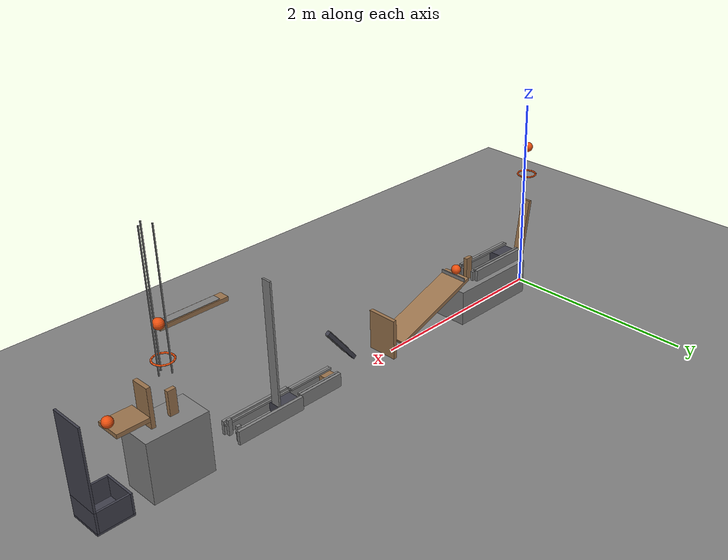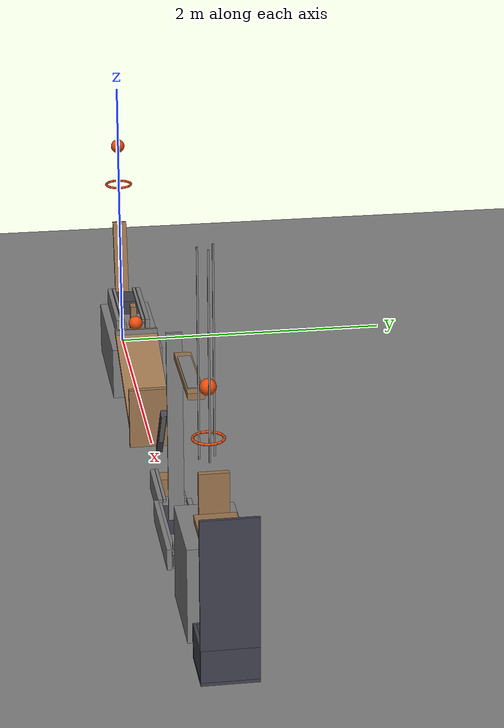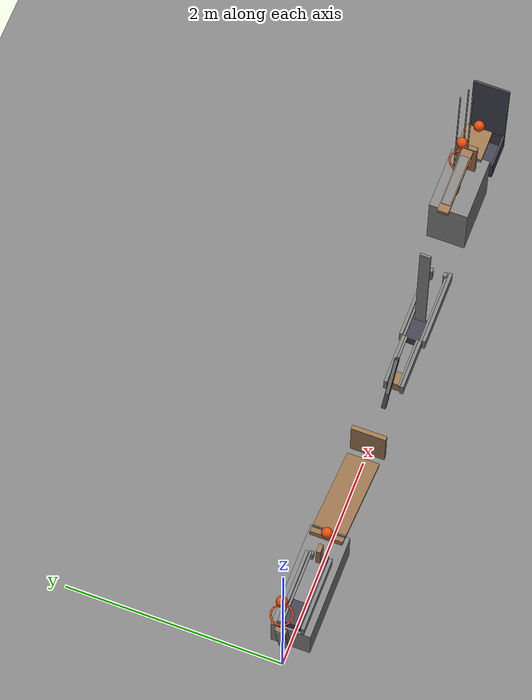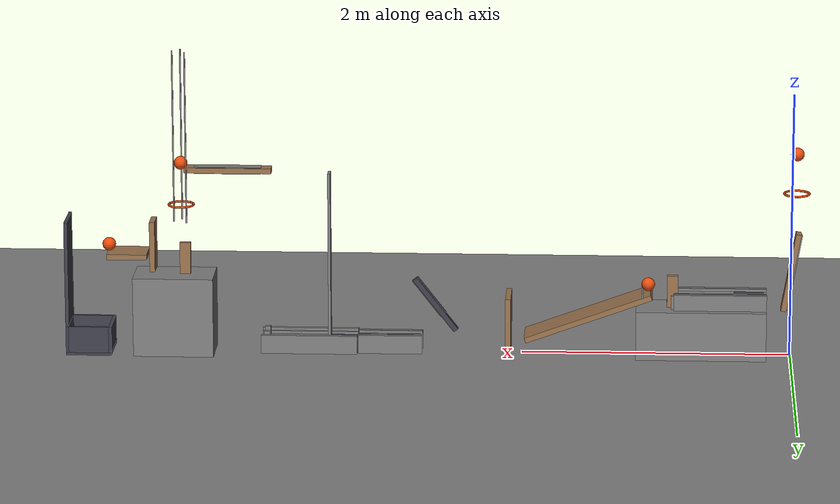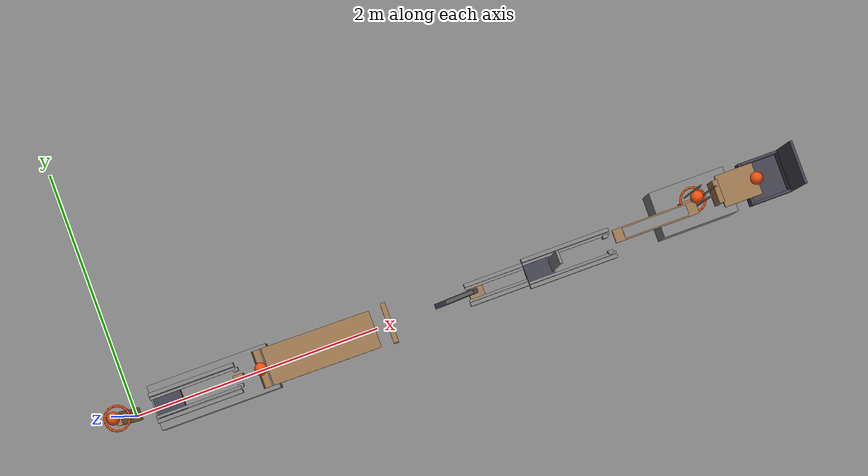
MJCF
<mujoco model="passive_gravity_cascade">
  <compiler angle="radian"/>
  <option timestep="0.002"/>
  <worldbody>
    <geom name="floor" type="plane" size="12 12 0.1" friction="0.72 0.001 0.0001"/>
    <body name="ring1">
      <geom name="ring1_00" type="capsule" size="0.008" fromto="0.0612474 0 1.24892 0.054119 0.0358366 1.24892" friction="0.72 0.005 0.0001" solref="0.01 1" rgba="0.9 0.3 0.05 1"/>
      <geom name="ring1_01" type="capsule" size="0.008" fromto="0.054119 0.0358366 1.24892 0.0338192 0.0662175 1.24892" friction="0.72 0.005 0.0001" solref="0.01 1" rgba="0.9 0.3 0.05 1"/>
      <geom name="ring1_02" type="capsule" size="0.008" fromto="0.0338192 0.0662175 1.24892 0.00343834 0.0865173 1.24892" friction="0.72 0.005 0.0001" solref="0.01 1" rgba="0.9 0.3 0.05 1"/>
      <geom name="ring1_03" type="capsule" size="0.008" fromto="0.00343834 0.0865173 1.24892 -0.0323983 0.0936457 1.24892" friction="0.72 0.005 0.0001" solref="0.01 1" rgba="0.9 0.3 0.05 1"/>
      <geom name="ring1_04" type="capsule" size="0.008" fromto="-0.0323983 0.0936457 1.24892 -0.0682349 0.0865173 1.24892" friction="0.72 0.005 0.0001" solref="0.01 1" rgba="0.9 0.3 0.05 1"/>
      <geom name="ring1_05" type="capsule" size="0.008" fromto="-0.0682349 0.0865173 1.24892 -0.0986158 0.0662175 1.24892" friction="0.72 0.005 0.0001" solref="0.01 1" rgba="0.9 0.3 0.05 1"/>
      <geom name="ring1_06" type="capsule" size="0.008" fromto="-0.0986158 0.0662175 1.24892 -0.118916 0.0358366 1.24892" friction="0.72 0.005 0.0001" solref="0.01 1" rgba="0.9 0.3 0.05 1"/>
      <geom name="ring1_07" type="capsule" size="0.008" fromto="-0.118916 0.0358366 1.24892 -0.126044 1.14683e-17 1.24892" friction="0.72 0.005 0.0001" solref="0.01 1" rgba="0.9 0.3 0.05 1"/>
      <geom name="ring1_08" type="capsule" size="0.008" fromto="-0.126044 1.14683e-17 1.24892 -0.118916 -0.0358366 1.24892" friction="0.72 0.005 0.0001" solref="0.01 1" rgba="0.9 0.3 0.05 1"/>
      <geom name="ring1_09" type="capsule" size="0.008" fromto="-0.118916 -0.0358366 1.24892 -0.0986158 -0.0662175 1.24892" friction="0.72 0.005 0.0001" solref="0.01 1" rgba="0.9 0.3 0.05 1"/>
      <geom name="ring1_10" type="capsule" size="0.008" fromto="-0.0986158 -0.0662175 1.24892 -0.0682349 -0.0865173 1.24892" friction="0.72 0.005 0.0001" solref="0.01 1" rgba="0.9 0.3 0.05 1"/>
      <geom name="ring1_11" type="capsule" size="0.008" fromto="-0.0682349 -0.0865173 1.24892 -0.0323983 -0.0936457 1.24892" friction="0.72 0.005 0.0001" solref="0.01 1" rgba="0.9 0.3 0.05 1"/>
      <geom name="ring1_12" type="capsule" size="0.008" fromto="-0.0323983 -0.0936457 1.24892 0.00343834 -0.0865173 1.24892" friction="0.72 0.005 0.0001" solref="0.01 1" rgba="0.9 0.3 0.05 1"/>
      <geom name="ring1_13" type="capsule" size="0.008" fromto="0.00343834 -0.0865173 1.24892 0.0338192 -0.0662175 1.24892" friction="0.72 0.005 0.0001" solref="0.01 1" rgba="0.9 0.3 0.05 1"/>
      <geom name="ring1_14" type="capsule" size="0.008" fromto="0.0338192 -0.0662175 1.24892 0.054119 -0.0358366 1.24892" friction="0.72 0.005 0.0001" solref="0.01 1" rgba="0.9 0.3 0.05 1"/>
      <geom name="ring1_15" type="capsule" size="0.008" fromto="0.054119 -0.0358366 1.24892 0.0612474 -2.29366e-17 1.24892" friction="0.72 0.005 0.0001" solref="0.01 1" rgba="0.9 0.3 0.05 1"/>
    </body>
    <body name="lever1" pos="0 0 0.65">
      <joint name="lever1_hinge" type="hinge" pos="0 0 0" axis="0 1 0" limited="true" range="-0.785398 0" damping="0.04"/>
      <geom name="lever1" type="box" pos="0 0 0" size="0.3 0.05 0.02" euler="0 1.39626 0" mass="0.5" friction="0.72 0.005 0.0001" solref="0.01 1" rgba="0.6 0.45 0.3 1"/>
    </body>
    <body name="lever booster" pos="0 0 0.65">
      <joint name="lever_booster_hinge" type="hinge" pos="0 0 0" axis="0 1 0" limited="true" range="-0.785398 0" damping="0.04"/>
      <geom name="lever booster" type="box" pos="0.0001 0 0.05" size="0.005 0.005 0.005" mass="50" contype="0" conaffinity="0"/>
      <geom name="lever booster coupling" type="box" pos="-0.0246202 0 -0.0043412" size="0.29 0.04 0.005" euler="0 1.39626 0" mass="0.002" friction="0.72 0.005 0.0001" solref="0.01 1"/>
    </body>
    <body name="ball1" pos="-0.0323983 0 1.54892">
      <freejoint/>
      <geom name="ball1" type="sphere" pos="0 0 0" size="0.05" mass="0.2" condim="6" friction="0.72 0.001 0.0001" solref="0.01 1" rgba="0.9 0.3 0.05 1"/>
    </body>
    <body name="first slide bed">
      <geom name="first slide bed" type="box" pos="0.665 0 0.185" size="0.485 0.18 0.185" friction="0.72 0.005 0.0001" solref="0.01 1"/>
    </body>
    <body name="cart1" pos="0.31 0 0.42">
      <freejoint/>
      <geom name="cart1" type="box" pos="0 0 0" size="0.11 0.09 0.05" mass="0.5" friction="0.72 0.005 0.0001" solref="0.01 1" rgba="0.25 0.25 0.3 1"/>
    </body>
    <body name="first slide left rail">
      <geom name="first slide left rail" type="box" pos="0.525 0.107 0.43" size="0.345 0.015 0.06" friction="0.72 0.005 0.0001" solref="0.01 1"/>
    </body>
    <body name="first slide right rail">
      <geom name="first slide right rail" type="box" pos="0.525 -0.107 0.43" size="0.345 0.015 0.06" friction="0.72 0.005 0.0001" solref="0.01 1"/>
    </body>
    <body name="first slide left roof">
      <geom name="first slide left roof" type="box" pos="0.525 0.075 0.482" size="0.345 0.01 0.01" friction="0.72 0.005 0.0001" solref="0.01 1"/>
    </body>
    <body name="first slide right roof">
      <geom name="first slide right roof" type="box" pos="0.525 -0.075 0.482" size="0.345 0.01 0.01" friction="0.72 0.005 0.0001" solref="0.01 1"/>
    </body>
    <body name="first slide left bumper">
      <geom name="first slide left bumper" type="box" pos="0.87 0.065 0.42" size="0.02 0.015 0.05" friction="0.72 0.005 0.0001" solref="0.01 1"/>
    </body>
    <body name="first slide right bumper">
      <geom name="first slide right bumper" type="box" pos="0.87 -0.065 0.42" size="0.02 0.015 0.05" friction="0.72 0.005 0.0001" solref="0.01 1"/>
    </body>
    <body name="domino1" pos="0.88 0 0.49">
      <freejoint/>
      <geom name="domino1" type="box" pos="0 0 0" size="0.04 0.02 0.12" mass="0.25" friction="0.72 0.005 0.0001" solref="0.01 1" rgba="0.6 0.45 0.3 1"/>
    </body>
    <body name="ramp1">
      <geom name="ramp1" type="box" pos="1.5059 0 0.302216" size="0.5 0.15 0.02" euler="0 0.349066 0" friction="0.72 0.005 0.0001" solref="0.01 1" rgba="0.6 0.45 0.3 1"/>
    </body>
    <body name="ball2" pos="1.06 0 0.539005">
      <freejoint/>
      <geom name="ball2" type="sphere" pos="0 0 0" size="0.05" mass="0.2" condim="6" friction="0.72 0.001 0.0001" solref="0.01 1" rgba="0.9 0.3 0.05 1"/>
    </body>
    <body name="ramp retaining lip">
      <geom name="ramp retaining lip" type="box" pos="1.1025 0 0.486005" size="0.005 0.15 0.02" friction="0.72 0.005 0.0001" solref="0.01 1"/>
    </body>
    <body name="door1" pos="2.10259 0 0.03">
      <joint name="door1_hinge" type="hinge" pos="0 0 0" axis="0 1 0" limited="true" range="0 1.22173" damping="0.04"/>
      <geom name="door1" type="box" pos="0 0 0.21" size="0.02 0.16 0.21" mass="0.45" friction="0.72 0.005 0.0001" solref="0.01 1" rgba="0.6 0.45 0.3 1"/>
    </body>
    <body name="pendulum1" pos="2.80259 0 0.56">
      <joint name="pendulum1_hinge" type="hinge" pos="0 0 0" axis="0 1 0" limited="true" range="-0.663225 0" damping="0.04"/>
      <geom name="pendulum1" type="box" pos="-0.153915 0 -0.197003" size="0.25 0.02 0.02" euler="0 2.23402 0" mass="0.35" friction="0.72 0.005 0.0001" solref="0.01 1" rgba="0.25 0.25 0.3 1"/>
    </body>
    <body name="pendulum booster" pos="2.80259 0 0.56">
      <joint name="pendulum_booster_hinge" type="hinge" pos="0 0 0" axis="0 1 0" limited="true" range="-0.663225 0" damping="0.04"/>
      <geom name="pendulum booster" type="box" pos="1e-05 0 0.004" size="0.0005 0.0005 0.0005" mass="30000" contype="0" conaffinity="0"/>
      <geom name="pendulum front coupling" type="box" pos="-0.0896165 0 -0.152062" size="0.175 0.015 0.003" euler="0 2.23402 0" mass="0.002" friction="0.72 0.005 0.0001" solref="0.01 1"/>
      <geom name="pendulum back coupling" type="box" pos="-0.125865 0 -0.123742" size="0.175 0.015 0.003" euler="0 2.23402 0" mass="0.002" friction="0.72 0.005 0.0001" solref="0.01 1"/>
    </body>
    <body name="block1" pos="2.82259 0 0.06">
      <freejoint/>
      <geom name="block1" type="box" pos="0 0 0" size="0.06 0.06 0.06" mass="0.35" friction="0.72 0.005 0.0001" solref="0.01 1" rgba="0.6 0.45 0.3 1"/>
    </body>
    <body name="block left guide">
      <geom name="block left guide" type="box" pos="2.98759 0.077 0.07" size="0.24 0.015 0.07" friction="0.72 0.005 0.0001" solref="0.01 1"/>
    </body>
    <body name="block right guide">
      <geom name="block right guide" type="box" pos="2.98759 -0.077 0.07" size="0.24 0.015 0.07" friction="0.72 0.005 0.0001" solref="0.01 1"/>
    </body>
    <body name="block left roof">
      <geom name="block left roof" type="box" pos="2.98759 0.05 0.132" size="0.24 0.01 0.01" friction="0.72 0.005 0.0001" solref="0.01 1"/>
    </body>
    <body name="block right roof">
      <geom name="block right roof" type="box" pos="2.98759 -0.05 0.132" size="0.24 0.01 0.01" friction="0.72 0.005 0.0001" solref="0.01 1"/>
    </body>
    <body name="cart2" pos="3.34259 0 0.05">
      <freejoint/>
      <geom name="cart2" type="box" pos="0 0 0" size="0.11 0.09 0.05" mass="0.499" friction="0.72 0.005 0.0001" solref="0.01 1" rgba="0.25 0.25 0.3 1"/>
      <geom name="cart2 striker" type="box" pos="0.1 0 0.684849" size="0.01 0.05 0.634849" mass="0.001" friction="0.72 0.005 0.0001" solref="0.01 1"/>
    </body>
    <body name="second slide left rail">
      <geom name="second slide left rail" type="box" pos="3.59259 0.107 0.07" size="0.36 0.015 0.07" friction="0.72 0.005 0.0001" solref="0.01 1"/>
    </body>
    <body name="second slide right rail">
      <geom name="second slide right rail" type="box" pos="3.59259 -0.107 0.07" size="0.36 0.015 0.07" friction="0.72 0.005 0.0001" solref="0.01 1"/>
    </body>
    <body name="second slide left roof">
      <geom name="second slide left roof" type="box" pos="3.59259 0.078 0.112" size="0.36 0.01 0.01" friction="0.72 0.005 0.0001" solref="0.01 1"/>
    </body>
    <body name="second slide right roof">
      <geom name="second slide right roof" type="box" pos="3.59259 -0.078 0.112" size="0.36 0.01 0.01" friction="0.72 0.005 0.0001" solref="0.01 1"/>
    </body>
    <body name="second slide left bumper">
      <geom name="second slide left bumper" type="box" pos="3.91259 0.065 0.08" size="0.02 0.015 0.08" friction="0.72 0.005 0.0001" solref="0.01 1"/>
    </body>
    <body name="second slide right bumper">
      <geom name="second slide right bumper" type="box" pos="3.91259 -0.065 0.08" size="0.02 0.015 0.08" friction="0.72 0.005 0.0001" solref="0.01 1"/>
    </body>
    <body name="seesaw1" pos="4.19759 0 1.3867">
      <joint name="seesaw1_hinge" type="hinge" pos="0 0 0" axis="0 1 0" limited="true" range="-0.733038 0" damping="0.04"/>
      <geom name="seesaw1" type="box" pos="0 0 0" size="0.325 0.05 0.02" mass="0.55" friction="0.72 0.005 0.0001" solref="0.01 1" rgba="0.6 0.45 0.3 1"/>
    </body>
    <body name="seesaw booster" pos="4.19759 0 1.3867">
      <joint name="seesaw_booster_hinge" type="hinge" pos="0 0 0" axis="0 1 0" limited="true" range="-0.733038 0" damping="0.04"/>
      <geom name="seesaw booster" type="box" pos="0 0 0.02" size="0.001 0.001 0.001" mass="200" contype="0" conaffinity="0"/>
      <geom name="seesaw lower coupling" type="box" pos="0 0 -0.023" size="0.25 0.04 0.003" mass="0.002" friction="0.72 0.005 0.0001" solref="0.01 1"/>
      <geom name="seesaw upper coupling" type="box" pos="0 0 0.023" size="0.25 0.04 0.003" mass="0.002" friction="0.72 0.005 0.0001" solref="0.01 1"/>
    </body>
    <body name="ring2">
      <geom name="ring2_00" type="capsule" size="0.008" fromto="4.63624 0.065 1.13 4.62911 0.100837 1.13" friction="0.72 0.005 0.0001" solref="0.01 1" rgba="0.9 0.3 0.05 1"/>
      <geom name="ring2_01" type="capsule" size="0.008" fromto="4.62911 0.100837 1.13 4.60881 0.131217 1.13" friction="0.72 0.005 0.0001" solref="0.01 1" rgba="0.9 0.3 0.05 1"/>
      <geom name="ring2_02" type="capsule" size="0.008" fromto="4.60881 0.131217 1.13 4.57843 0.151517 1.13" friction="0.72 0.005 0.0001" solref="0.01 1" rgba="0.9 0.3 0.05 1"/>
      <geom name="ring2_03" type="capsule" size="0.008" fromto="4.57843 0.151517 1.13 4.54259 0.158646 1.13" friction="0.72 0.005 0.0001" solref="0.01 1" rgba="0.9 0.3 0.05 1"/>
      <geom name="ring2_04" type="capsule" size="0.008" fromto="4.54259 0.158646 1.13 4.50676 0.151517 1.13" friction="0.72 0.005 0.0001" solref="0.01 1" rgba="0.9 0.3 0.05 1"/>
      <geom name="ring2_05" type="capsule" size="0.008" fromto="4.50676 0.151517 1.13 4.47637 0.131217 1.13" friction="0.72 0.005 0.0001" solref="0.01 1" rgba="0.9 0.3 0.05 1"/>
      <geom name="ring2_06" type="capsule" size="0.008" fromto="4.47637 0.131217 1.13 4.45607 0.100837 1.13" friction="0.72 0.005 0.0001" solref="0.01 1" rgba="0.9 0.3 0.05 1"/>
      <geom name="ring2_07" type="capsule" size="0.008" fromto="4.45607 0.100837 1.13 4.44895 0.065 1.13" friction="0.72 0.005 0.0001" solref="0.01 1" rgba="0.9 0.3 0.05 1"/>
      <geom name="ring2_08" type="capsule" size="0.008" fromto="4.44895 0.065 1.13 4.45607 0.0291634 1.13" friction="0.72 0.005 0.0001" solref="0.01 1" rgba="0.9 0.3 0.05 1"/>
      <geom name="ring2_09" type="capsule" size="0.008" fromto="4.45607 0.0291634 1.13 4.47637 -0.00121748 1.13" friction="0.72 0.005 0.0001" solref="0.01 1" rgba="0.9 0.3 0.05 1"/>
      <geom name="ring2_10" type="capsule" size="0.008" fromto="4.47637 -0.00121748 1.13 4.50676 -0.0215173 1.13" friction="0.72 0.005 0.0001" solref="0.01 1" rgba="0.9 0.3 0.05 1"/>
      <geom name="ring2_11" type="capsule" size="0.008" fromto="4.50676 -0.0215173 1.13 4.54259 -0.0286457 1.13" friction="0.72 0.005 0.0001" solref="0.01 1" rgba="0.9 0.3 0.05 1"/>
      <geom name="ring2_12" type="capsule" size="0.008" fromto="4.54259 -0.0286457 1.13 4.57843 -0.0215173 1.13" friction="0.72 0.005 0.0001" solref="0.01 1" rgba="0.9 0.3 0.05 1"/>
      <geom name="ring2_13" type="capsule" size="0.008" fromto="4.57843 -0.0215173 1.13 4.60881 -0.00121748 1.13" friction="0.72 0.005 0.0001" solref="0.01 1" rgba="0.9 0.3 0.05 1"/>
      <geom name="ring2_14" type="capsule" size="0.008" fromto="4.60881 -0.00121748 1.13 4.62911 0.0291634 1.13" friction="0.72 0.005 0.0001" solref="0.01 1" rgba="0.9 0.3 0.05 1"/>
      <geom name="ring2_15" type="capsule" size="0.008" fromto="4.62911 0.0291634 1.13 4.63624 0.065 1.13" friction="0.72 0.005 0.0001" solref="0.01 1" rgba="0.9 0.3 0.05 1"/>
    </body>
    <body name="ball3 diagonal guide">
      <geom name="ball3 diagonal guide" type="box" pos="4.50188 0.105709 1.65" size="0.005 0.005 0.65" friction="0.72 0.005 0.0001" solref="0.01 1"/>
    </body>
    <body name="ball3 forward guide">
      <geom name="ball3 forward guide" type="box" pos="4.59809 0.065 1.65" size="0.005 0.005 0.65" friction="0.72 0.005 0.0001" solref="0.01 1"/>
    </body>
    <body name="ball3 rear guide">
      <geom name="ball3 rear guide" type="box" pos="4.54259 0.0095 1.65" size="0.005 0.005 0.65" friction="0.72 0.005 0.0001" solref="0.01 1"/>
    </body>
    <body name="ball3" pos="4.54259 0.065 1.45">
      <freejoint/>
      <geom name="ball3" type="sphere" pos="0 0 0" size="0.05" mass="0.2" condim="6" friction="0.72 0.001 0.0001" solref="0.01 1" rgba="0.9 0.3 0.05 1"/>
    </body>
    <body name="final platform">
      <geom name="final platform" type="box" pos="4.6 0.065 0.3" size="0.3 0.18 0.3" friction="0.72 0.005 0.0001" solref="0.01 1"/>
    </body>
    <body name="domino2" pos="4.51759 0.065 0.72">
      <freejoint/>
      <geom name="domino2" type="box" pos="0 0 0" size="0.04 0.02 0.12" mass="0.25" friction="0.72 0.005 0.0001" solref="0.01 1" rgba="0.6 0.45 0.3 1"/>
    </body>
    <body name="flap1" pos="4.75759 0.065 0.63">
      <joint name="flap1_hinge" type="hinge" pos="0 0 0" axis="0 1 0" limited="true" range="0 1.0472" damping="0.04"/>
      <geom name="flap1" type="box" pos="0 0 0.19" size="0.02 0.09 0.19" mass="0.28" friction="0.72 0.005 0.0001" solref="0.01 1" rgba="0.6 0.45 0.3 1"/>
    </body>
    <body name="cup1">
      <geom name="cup1_base" type="box" pos="5.23668 0.065 0.01" size="0.17 0.17 0.01" friction="0.72 0.005 0.0001" solref="0.01 1" rgba="0.25 0.25 0.3 1"/>
      <geom name="cup1_near_wall" type="box" pos="5.07668 0.065 0.12" size="0.01 0.17 0.1" friction="0.72 0.005 0.0001" solref="0.01 1" rgba="0.25 0.25 0.3 1"/>
      <geom name="cup1_far_wall" type="box" pos="5.39668 0.065 0.12" size="0.01 0.17 0.1" friction="0.72 0.005 0.0001" solref="0.01 1" rgba="0.25 0.25 0.3 1"/>
      <geom name="cup1_left_wall" type="box" pos="5.23668 0.225 0.12" size="0.15 0.01 0.1" friction="0.72 0.005 0.0001" solref="0.01 1" rgba="0.25 0.25 0.3 1"/>
      <geom name="cup1_right_wall" type="box" pos="5.23668 -0.095 0.12" size="0.15 0.01 0.1" friction="0.72 0.005 0.0001" solref="0.01 1" rgba="0.25 0.25 0.3 1"/>
    </body>
    <body name="shelf1">
      <geom name="shelf1" type="box" pos="4.94668 0.065 0.75" size="0.15 0.125 0.02" friction="0.72 0.005 0.0001" solref="0.01 1" rgba="0.6 0.45 0.3 1"/>
    </body>
    <body name="ball4" pos="5.08668 0.065 0.82">
      <freejoint/>
      <geom name="ball4" type="sphere" pos="0 0 0" size="0.05" mass="0.2" condim="6" friction="0.72 0.001 0.0001" solref="0.01 1" rgba="0.9 0.3 0.05 1"/>
    </body>
    <body name="cup catch backboard">
      <geom name="cup catch backboard" type="box" pos="5.39668 0.065 0.62" size="0.01 0.17 0.4" friction="0.72 0.005 0.0001" solref="0.01 1" rgba="0.25 0.25 0.3 1"/>
    </body>
  </worldbody>
  <keyframe>
    <key name="start" qpos="0 0 -0.0323983 0 1.54892 1 0 0 0 0.31 0 0.42 1 0 0 0 0.88 0 0.49 1 0 0 0 1.06 0 0.539005 1 0 0 0 0 0 0 2.82259 0 0.06 1 0 0 0 3.34259 0 0.05 1 0 0 0 0 0 4.54259 0.065 1.45 1 0 0 0 4.51759 0.065 0.72 1 0 0 0 0 5.08668 0.065 0.82 1 0 0 0" qvel="0 0 0 0 0 0 0 0 0 0 0 0 0 0 0 0 0 0 0 0 0 0 0 0 0 0 0 0 0 0 0 0 0 0 0 0 0 0 0 0 0 0 0 0 0 0 0 0 0 0 0 0 0 0 0 0 0 0 0 0 0 0"/>
  </keyframe>
</mujoco>
